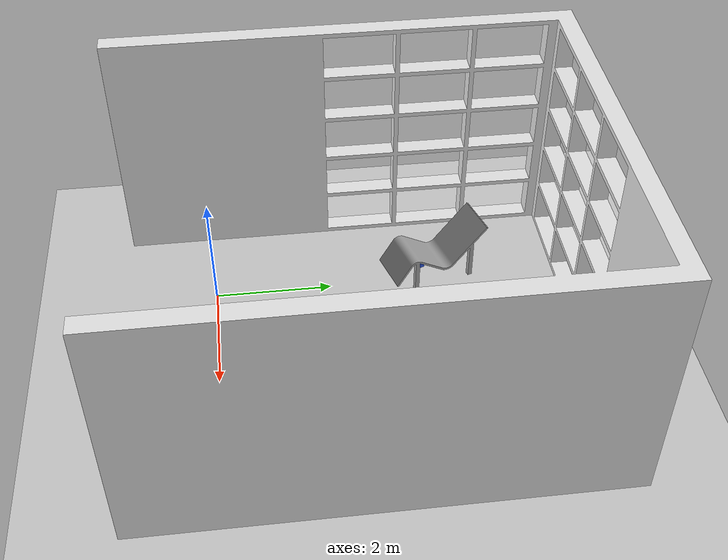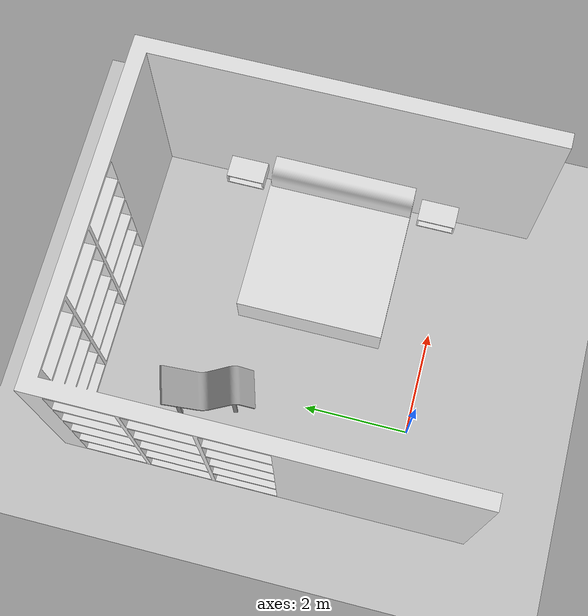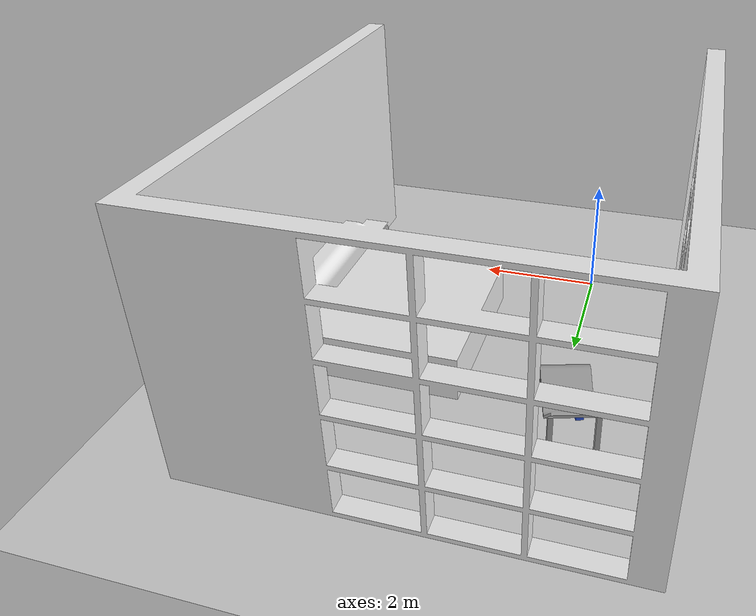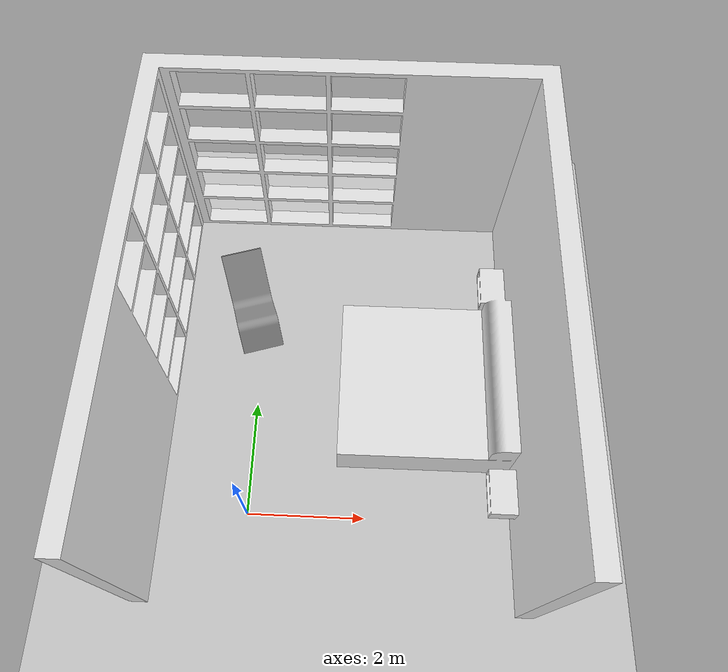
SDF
<?xml version="1.0" encoding="UTF-8"?>
<sdf version="1.4">
  <world name="default">
    <!-- *********************INITIAL POSE OF THE CAMERA***************************** -->
		<gui>
      <camera name="main_cam">
        <pose>1.15 -71.8 70 0 0.8 1.57</pose>
      </camera>
    </gui>

    <!-- *********************GROUND AND SUN***************************** -->
    <include>
      <uri>model://ground_plane</uri>
    </include>

    <include>
      <uri>model://sun</uri>
    </include>

    <!-- **********************Environment**************************** -->
    <model name="room">
      <pose>0 0 0  0 0 0</pose>
      <static>true</static>

      <link name="body">
        <visual name="visual">
          <geometry>
            <mesh>
            <uri>model://room.stl</uri>
            <scale>0.0015 0.0015 0.0015</scale>
            </mesh>
          </geometry>

          <material>
          <script>
            <uri>file://media/materials/scripts/gazebo.material</uri>
            <name>Gazebo/White</name>
          </script>
        </material>
        </visual>
        <collision name="collision">
     		<geometry>
     		<mesh>
      			<uri>model://room.stl</uri>
            		<scale>0.0015 0.0015 0.0015</scale>
            	</mesh>
     		</geometry>
   	     </collision>
      </link>
    </model>

    <model name="seat">
      <pose>-0.1 3.5 0  0 0 0.3</pose>
      <static>true</static>

      <link name="body">
        <visual name="visual">
          <geometry>
            <mesh>
            <uri>model://seat.stl</uri>
            <scale>0.0015 0.0015 0.0015</scale>
            </mesh>
          </geometry>

          <material>
          <script>
            <uri>file://media/materials/scripts/gazebo.material</uri>
            <name>Gazebo/Grey</name>
          </script>
        </material>
          </visual>
          <collision name = "collision">

     		<geometry>
     		<mesh>
      			<uri>model://seat.stl</uri>
            		<scale>0.0015 0.0015 0.0015</scale>
            	</mesh>

     		</geometry>
   	   </collision>

      </link>
    </model>

    <!-- **********************Box**************************** -->
    <include>
      <uri>model://basic_box</uri>
      <pose>-0.35 3.65 0 0 0 0.4</pose>
      <name>box1</name>
    </include>

  </world>
</sdf>

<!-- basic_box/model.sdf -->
<sdf version="1.4">
  <model name="box">
    <static>false</static>
    <link name="box">
      <visual name="visual_box">
        <pose>0 0 0.05 0 0 0</pose>
        <geometry>
          <box>
            <size>0.12 0.12 0.1</size>
          </box>
        </geometry>

        <material>
          <script>
            <uri>file://media/materials/scripts/gazebo.material</uri>
            <name>Gazebo/Blue</name>
          </script>
        </material>
      </visual>
      <collision name="collision_box">
        <pose>0 0 0.05 0 0 0</pose>
        <geometry>
          <box>
            <size>0.12 0.12 0.1</size>
          </box>
        </geometry>
      </collision>
      <xacro:box_inertial mass="0.1" width="0.12" height="0.12" depth="0.1"/>
    </link>
    <mu1>1</mu1>
    <mu2>1</mu2>
  </model>
</sdf>
